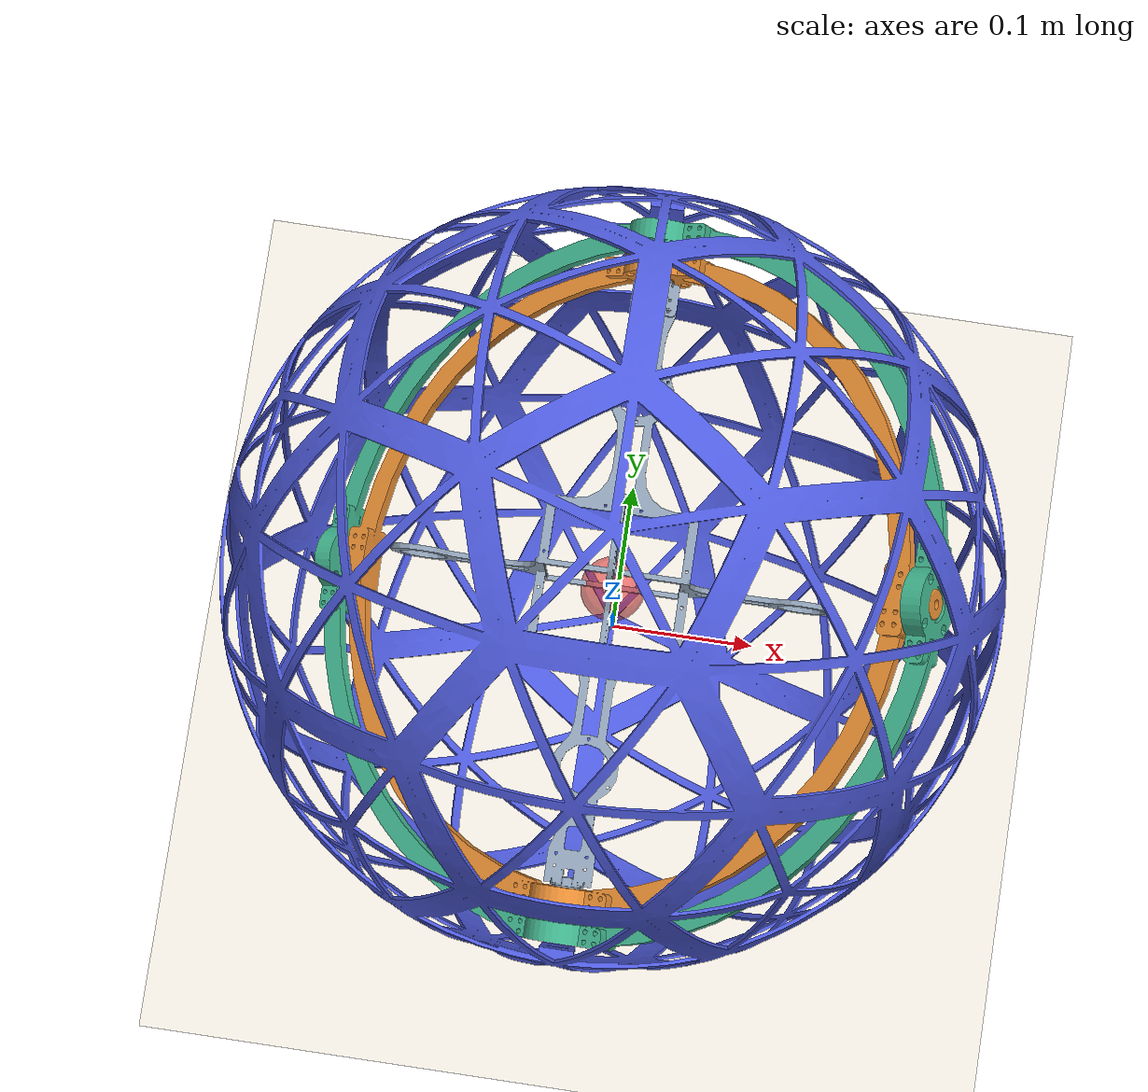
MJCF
<?xml version='1.0' encoding='utf-8'?>
<mujoco model="robot_v1">
  <compiler angle="radian" meshdir="../../robot_v1/meshes" />
  <asset>
    <mesh name="base_link" file="base_link.STL" />
    <mesh name="Link1" file="Link1.STL" />
    <mesh name="Link2" file="Link2.STL" />
    <mesh name="Link3" file="Link3.STL" />
  </asset>
  <worldbody>
    <geom name="ground" type="plane" size="10 10 0.1" rgba="0.92 0.9 0.86 1.0" pos="0 0 -0.5" friction="1.0 0.02 0.001" condim="6" solref="0.02 1" solimp="0.9 0.95 0.01" contype="1" conaffinity="1" />
    <body name="base_link" pos="0 0 0.3">
      <freejoint name="base_freejoint" />
      <inertial pos="2.32312122628482E-05 -6.93889390390723E-17 0.00149660321293572" mass="0.0881712091132188" diaginertia="0.000483936285114512 0.000280418522330968 0.000484748259250526" />
      <geom type="mesh" mesh="base_link" rgba="0.55 0.62 0.7 1.0" contype="0" conaffinity="0" />
      <body name="Link1" pos="3.5945E-05 -0.195 0.0015" euler="0 0 0">
        <joint name="joint1" type="hinge" limited="false" axis="0 -1 0" damping="0.0005" frictionloss="0.0002" armature="0.0003" />
        <inertial pos="1.02581138028413E-13 0.195000000000013 7.33484719490702E-14" mass="0.28315394752081" diaginertia="0.00406022994183874 0.000635822702847486 0.00432466337088171" />
        <geom type="mesh" mesh="Link1" rgba="0.9 0.55 0.2 1.0" contype="0" conaffinity="0" />
        <body name="Link2" pos="-0.17878 0.195 -0.11393" euler="0 0 -3.1416">
          <joint name="joint2" type="hinge" limited="false" axis="-0.84332 0 0.53742" damping="0.0005" frictionloss="0.0002" armature="0.0003" />
          <inertial pos="-0.178782967144676 2.00946898010201E-13 0.113932658438872" mass="0.301442340403242" diaginertia="0.00101703966013663 0.000795350839296753 0.00134656966350589" />
          <geom type="mesh" mesh="Link2" rgba="0.25 0.7 0.55 1.0" contype="0" conaffinity="0" />
          <body name="Link3" pos="-0.17878 -0.215 0.11393" euler="0 0 3.1416">
            <joint name="joint3" type="hinge" limited="false" axis="0.00010218 -1 6.5118E-05" damping="0.0005" frictionloss="0.0002" armature="0.0003" />
            <inertial pos="-1.07070866200987E-08 -0.215126592531979 -2.89904654076014E-06" mass="0.448110435494101" diaginertia="0.00132675002235673 0.00132701949121583 0.00130432215567495" />
            <geom type="mesh" mesh="Link3" rgba="0.3 0.35 0.85 0.95" friction="1.0 0.02 0.001" condim="6" solref="0.02 1" solimp="0.9 0.95 0.01" contype="1" conaffinity="1" />
          </body>
        </body>
      </body>
      <body name="ballast" pos="0.0 0.0 -0.05">
        <geom type="sphere" size="0.02" mass="0.14" rgba="0.92 0.2 0.2 0.6" contype="0" conaffinity="0" />
      </body>
    </body>
  </worldbody>
  <option timestep="0.001" gravity="0 0 -9.81" iterations="100" tolerance="1e-6" solver="Newton" integrator="implicitfast" cone="elliptic" />
</mujoco>
